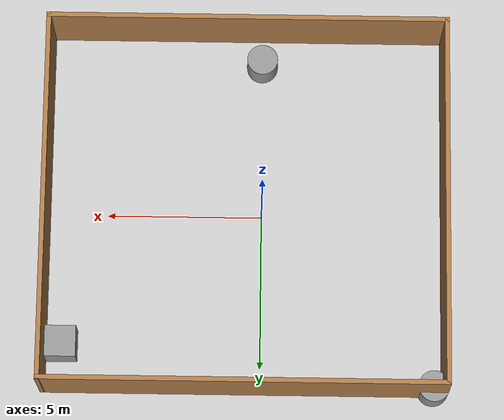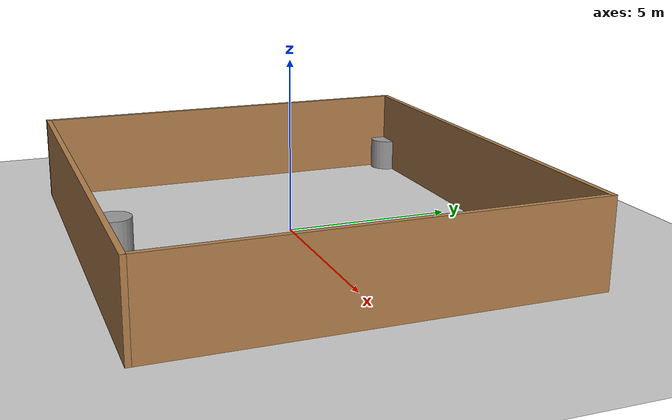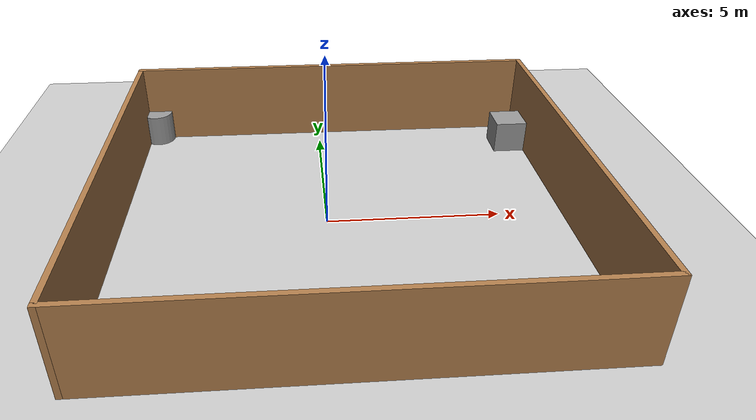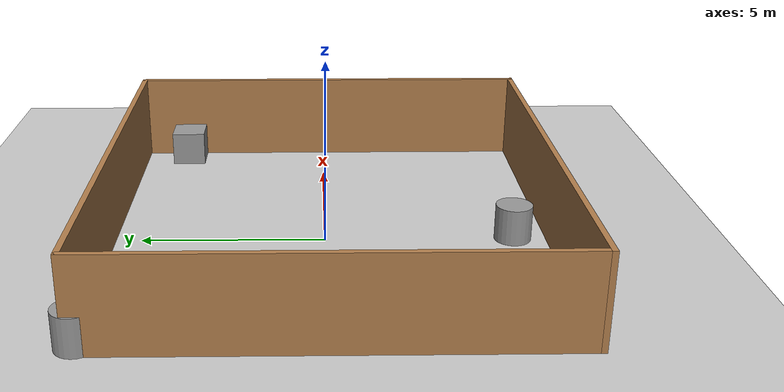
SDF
<sdf version="1.7">
 <world name="default">
  <light name="sun" type="directional">
   <pose>0 0 10 0 -0 0</pose>
   <diffuse>0.8 0.8 0.8 1</diffuse>
   <specular>0.2 0.2 0.2 1</specular>
   <attenuation>
    <range>1000</range>
    <constant>0.9</constant>
    <linear>0.01</linear>
    <quadratic>0.001</quadratic>
   </attenuation>
   <direction>-0.5 0.1 -0.9</direction>
   <spot><inner_angle>0</inner_angle><outer_angle>0</outer_angle><falloff>0</falloff></spot>
  </light>
  <model name="ground_plane">
   <static>1</static>
   <link name="link">
    <collision name="collision">
     <geometry><plane><normal>0 0 1</normal><size>100 100</size></plane></geometry>
     <surface>
      <contact><collide_bitmask>65535</collide_bitmask></contact>
      <friction><ode><mu>100</mu><mu2>50</mu2></ode></friction>
     </surface>
    </collision>
    <visual name="visual">
     <cast_shadows>0</cast_shadows>
     <geometry><plane><normal>0 0 1</normal><size>100 100</size></plane></geometry>
     <material>
      <script><uri>file://media/materials/scripts/gazebo.material</uri><name>Gazebo/Grey</name></script>
     </material>
    </visual>
   </link>
  </model>
  <gravity>0 0 -9.8</gravity>
  <magnetic_field>6e-06 2.3e-05 -4.2e-05</magnetic_field>
  <atmosphere type="adiabatic"/>
  <physics type="ode">
   <max_step_size>0.001</max_step_size>
   <real_time_factor>1</real_time_factor>
   <real_time_update_rate>1000</real_time_update_rate>
  </physics>
  <scene><ambient>0.4 0.4 0.4 1</ambient><background>0.7 0.7 0.7 1</background><shadows>1</shadows></scene>
  <audio><device>default</device></audio>
  <spherical_coordinates>
   <surface_model>EARTH_WGS84</surface_model>
   <latitude_deg>0</latitude_deg>
   <longitude_deg>0</longitude_deg>
   <elevation>0</elevation>
   <heading_deg>0</heading_deg>
  </spherical_coordinates>
  <model name="Building">
   <pose>0.527679 -0.160348 0 0 -0 0</pose>
   <link name="Wall_1">
    <collision name="Wall_1_Collision">
     <geometry><box><size>12 0.15 2.5</size></box></geometry>
     <pose>0 0 1.25 0 -0 0</pose>
    </collision>
    <visual name="Wall_1_Visual">
     <pose>0 0 1.25 0 -0 0</pose>
     <geometry><box><size>12 0.15 2.5</size></box></geometry>
     <material>
      <script><uri>file://media/materials/scripts/gazebo.material</uri><name>Gazebo/Wood</name></script>
      <ambient>0.760784 0.662745 0.627451 1</ambient>
     </material>
     <meta><layer>0</layer></meta>
    </visual>
    <pose>-6.425 0 0 0 -0 1.5708</pose>
   </link>
   <link name="Wall_2">
    <collision name="Wall_2_Collision">
     <geometry><box><size>13 0.15 2.5</size></box></geometry>
     <pose>0 0 1.25 0 -0 0</pose>
    </collision>
    <visual name="Wall_2_Visual">
     <pose>0 0 1.25 0 -0 0</pose>
     <geometry><box><size>13 0.15 2.5</size></box></geometry>
     <material>
      <script><uri>file://media/materials/scripts/gazebo.material</uri><name>Gazebo/Wood</name></script>
      <ambient>1 1 1 1</ambient>
     </material>
     <meta><layer>0</layer></meta>
    </visual>
    <pose>-0 5.925 0 0 -0 0</pose>
   </link>
   <link name="Wall_3">
    <collision name="Wall_3_Collision">
     <geometry><box><size>12 0.15 2.5</size></box></geometry>
     <pose>0 0 1.25 0 -0 0</pose>
    </collision>
    <visual name="Wall_3_Visual">
     <pose>0 0 1.25 0 -0 0</pose>
     <geometry><box><size>12 0.15 2.5</size></box></geometry>
     <material>
      <script><uri>file://media/materials/scripts/gazebo.material</uri><name>Gazebo/Wood</name></script>
      <ambient>1 1 1 1</ambient>
     </material>
     <meta><layer>0</layer></meta>
    </visual>
    <pose>6.425 0 0 0 -0 -1.5708</pose>
   </link>
   <link name="Wall_4">
    <collision name="Wall_4_Collision">
     <geometry><box><size>13 0.15 2.5</size></box></geometry>
     <pose>0 0 1.25 0 -0 0</pose>
    </collision>
    <visual name="Wall_4_Visual">
     <pose>0 0 1.25 0 -0 0</pose>
     <geometry><box><size>13 0.15 2.5</size></box></geometry>
     <material>
      <script><uri>file://media/materials/scripts/gazebo.material</uri><name>Gazebo/Wood</name></script>
      <ambient>0.760784 0.662745 0.627451 1</ambient>
     </material>
     <meta><layer>0</layer></meta>
    </visual>
    <pose>-0 -5.925 0 0 -0 3.14159</pose>
   </link>
   <static>1</static>
  </model>
  <model name="unit_cylinder">
   <pose>-5.54673 5.6323 0.499997 3e-06 -4e-06 0</pose>
   <link name="link">
    <inertial>
     <mass>1</mass>
     <inertia><ixx>0.145833</ixx><ixy>0</ixy><ixz>0</ixz><iyy>0.145833</iyy><iyz>0</iyz><izz>0.125</izz></inertia>
    </inertial>
    <collision name="collision">
     <geometry><cylinder><radius>0.5</radius><length>1</length></cylinder></geometry>
    </collision>
    <visual name="visual">
     <geometry><cylinder><radius>0.5</radius><length>1</length></cylinder></geometry>
     <material>
      <script><name>Gazebo/Grey</name><uri>file://media/materials/scripts/gazebo.material</uri></script>
     </material>
    </visual>
   </link>
  </model>
  <model name="unit_box">
   <pose>6.37769 4.33182 0.499996 0 -8e-06 -9e-06</pose>
   <link name="link">
    <inertial>
     <mass>1</mass>
     <inertia>
      <ixx>0.166667</ixx>
      <ixy>0</ixy>
      <ixz>0</ixz>
      <iyy>0.166667</iyy>
      <iyz>0</iyz>
      <izz>0.166667</izz>
     </inertia>
    </inertial>
    <collision name="collision"><geometry><box><size>1 1 1</size></box></geometry></collision>
    <visual name="visual">
     <geometry><box><size>1 1 1</size></box></geometry>
     <material>
      <script><name>Gazebo/Grey</name><uri>file://media/materials/scripts/gazebo.material</uri></script>
     </material>
    </visual>
   </link>
  </model>
  <model name="unit_cylinder_0">
   <pose>0.03291 -5.10957 0.499998 3e-06 -3e-06 0</pose>
   <link name="link">
    <inertial>
     <mass>1</mass>
     <inertia><ixx>0.145833</ixx><ixy>0</ixy><ixz>0</ixz><iyy>0.145833</iyy><iyz>0</iyz><izz>0.125</izz></inertia>
    </inertial>
    <collision name="collision">
     <geometry><cylinder><radius>0.5</radius><length>1</length></cylinder></geometry>
    </collision>
    <visual name="visual">
     <geometry><cylinder><radius>0.5</radius><length>1</length></cylinder></geometry>
     <material>
      <script><name>Gazebo/Grey</name><uri>file://media/materials/scripts/gazebo.material</uri></script>
     </material>
    </visual>
   </link>
  </model>
 </world>
</sdf>
